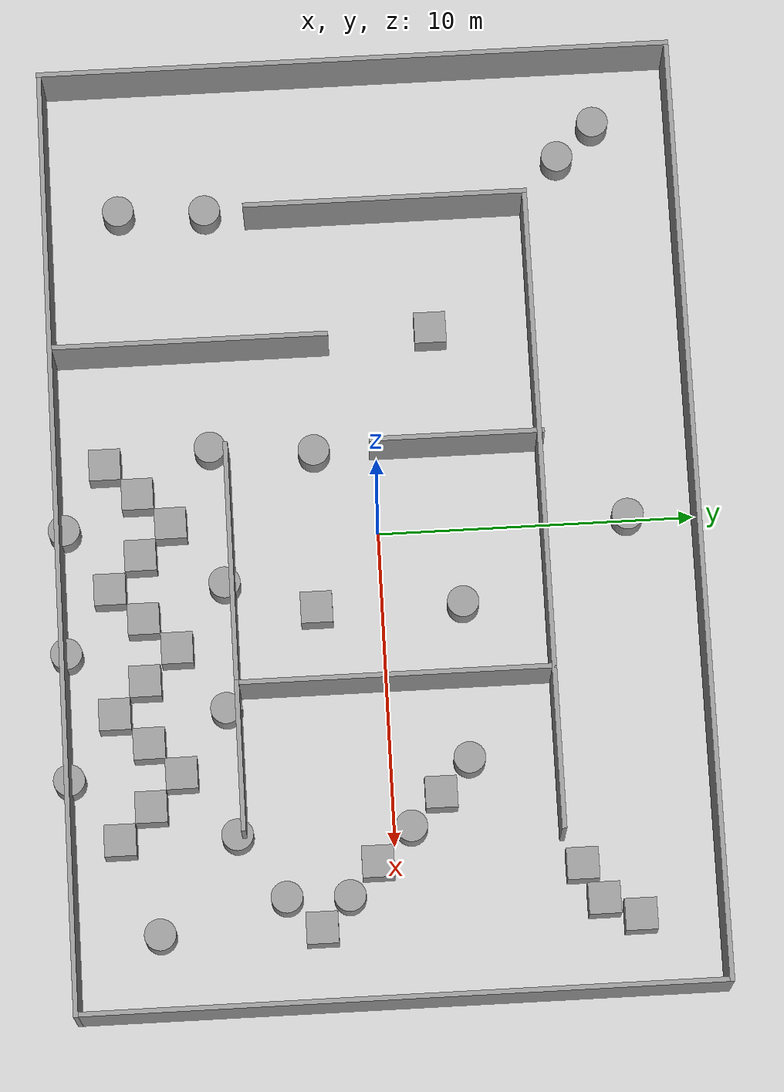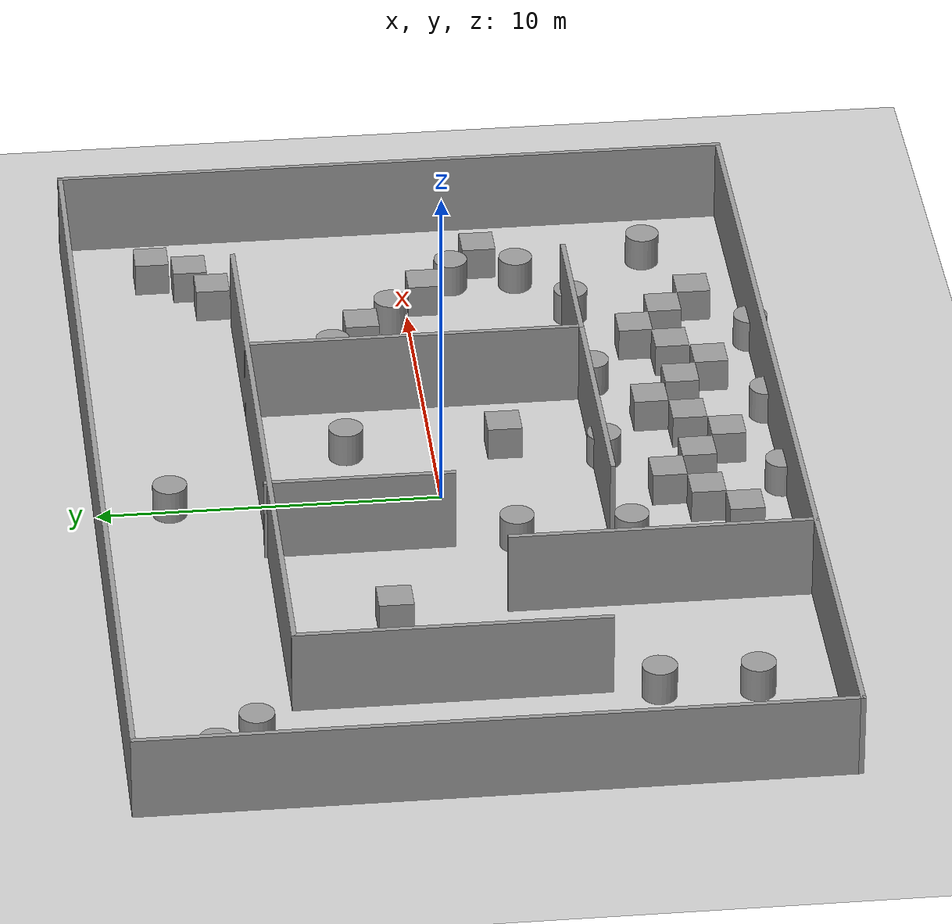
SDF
<sdf version="1.7">
 <world name="default">
  <light name="sun" type="directional">
   <pose>0 0 10 0 -0 0</pose>
   <diffuse>0.8 0.8 0.8 1</diffuse>
   <specular>0.2 0.2 0.2 1</specular>
   <attenuation>
    <range>1000</range>
    <constant>0.9</constant>
    <linear>0.01</linear>
    <quadratic>0.001</quadratic>
   </attenuation>
   <direction>-0.5 0.1 -0.9</direction>
   <spot><inner_angle>0</inner_angle><outer_angle>0</outer_angle><falloff>0</falloff></spot>
  </light>
  <model name="ground_plane">
   <static>1</static>
   <link name="link">
    <collision name="collision">
     <geometry><plane><normal>0 0 1</normal><size>100 100</size></plane></geometry>
     <surface>
      <contact><collide_bitmask>65535</collide_bitmask></contact>
      <friction><ode><mu>100</mu><mu2>50</mu2></ode></friction>
     </surface>
    </collision>
    <visual name="visual">
     <cast_shadows>0</cast_shadows>
     <geometry><plane><normal>0 0 1</normal><size>100 100</size></plane></geometry>
     <material>
      <script><uri>file://media/materials/scripts/gazebo.material</uri><name>Gazebo/Grey</name></script>
     </material>
    </visual>
   </link>
  </model>
  <gravity>0 0 -9.8</gravity>
  <magnetic_field>6e-06 2.3e-05 -4.2e-05</magnetic_field>
  <atmosphere type="adiabatic"/>
  <physics type="ode">
   <max_step_size>0.001</max_step_size>
   <real_time_factor>1</real_time_factor>
   <real_time_update_rate>1000</real_time_update_rate>
  </physics>
  <scene><ambient>0.4 0.4 0.4 1</ambient><background>0.7 0.7 0.7 1</background><shadows>1</shadows></scene>
  <spherical_coordinates>
   <surface_model>EARTH_WGS84</surface_model>
   <latitude_deg>0</latitude_deg>
   <longitude_deg>0</longitude_deg>
   <elevation>0</elevation>
   <heading_deg>0</heading_deg>
  </spherical_coordinates>
  <model name="base.world">
   <link name="Wall_0">
    <collision name="Wall_0_Collision">
     <geometry><box><size>20.15 0.15 2.5</size></box></geometry>
     <pose>0 0 1.25 0 -0 0</pose>
    </collision>
    <visual name="Wall_0_Visual">
     <pose>0 0 1.25 0 -0 0</pose>
     <geometry><box><size>20.15 0.15 2.5</size></box></geometry>
     <material>
      <script><uri>file://media/materials/scripts/gazebo.material</uri><name>Gazebo/Grey</name></script>
      <ambient>1 1 1 1</ambient>
     </material>
     <meta><layer>0</layer></meta>
    </visual>
    <pose>-15 0 0 0 -0 1.5708</pose>
   </link>
   <link name="Wall_11">
    <collision name="Wall_11_Collision">
     <geometry><box><size>9 0.15 2.5</size></box></geometry>
     <pose>0 0 1.25 0 -0 0</pose>
    </collision>
    <visual name="Wall_11_Visual">
     <pose>0 0 1.25 0 -0 0</pose>
     <geometry><box><size>9 0.15 2.5</size></box></geometry>
     <material>
      <script><uri>file://media/materials/scripts/gazebo.material</uri><name>Gazebo/Grey</name></script>
      <ambient>1 1 1 1</ambient>
     </material>
     <meta><layer>0</layer></meta>
    </visual>
    <pose>-10.331 0.772623 0 0 -0 1.5708</pose>
   </link>
   <link name="Wall_12">
    <collision name="Wall_12_Collision">
     <geometry><box><size>20.5 0.15 2.5</size></box></geometry>
     <pose>0 0 1.25 0 -0 0</pose>
    </collision>
    <visual name="Wall_12_Visual">
     <pose>0 0 1.25 0 -0 0</pose>
     <geometry><box><size>20.5 0.15 2.5</size></box></geometry>
     <material>
      <script><uri>file://media/materials/scripts/gazebo.material</uri><name>Gazebo/Grey</name></script>
      <ambient>1 1 1 1</ambient>
     </material>
     <meta><layer>0</layer></meta>
    </visual>
    <pose>-0.155983 5.19762 0 0 -0 0</pose>
   </link>
   <link name="Wall_14">
    <collision name="Wall_14_Collision">
     <geometry><box><size>8.829 0.15 2.5</size></box></geometry>
     <pose>0 0 1.25 0 -0 0</pose>
    </collision>
    <visual name="Wall_14_Visual">
     <pose>0 0 1.25 0 -0 0</pose>
     <geometry><box><size>8.829 0.15 2.5</size></box></geometry>
     <material>
      <script><uri>file://media/materials/scripts/gazebo.material</uri><name>Gazebo/Grey</name></script>
      <ambient>1 1 1 1</ambient>
     </material>
     <meta><layer>0</layer></meta>
    </visual>
    <pose>-6 -5.6605 0 0 -0 1.5708</pose>
   </link>
   <link name="Wall_16">
    <collision name="Wall_16_Collision">
     <geometry><box><size>9.982 0.15 2.5</size></box></geometry>
     <pose>0 0 1.25 0 -0 0</pose>
    </collision>
    <visual name="Wall_16_Visual">
     <pose>0 0 1.25 0 -0 0</pose>
     <geometry><box><size>9.982 0.15 2.5</size></box></geometry>
     <material>
      <script><uri>file://media/materials/scripts/gazebo.material</uri><name>Gazebo/Grey</name></script>
      <ambient>1 1 1 1</ambient>
     </material>
     <meta><layer>0</layer></meta>
    </visual>
    <pose>5 0.282 0 0 -0 -1.5708</pose>
   </link>
   <link name="Wall_18">
    <collision name="Wall_18_Collision">
     <geometry><box><size>4.721 0.15 2.5</size></box></geometry>
     <pose>0 0 1.25 0 -0 0</pose>
    </collision>
    <visual name="Wall_18_Visual">
     <pose>0 0 1.25 0 -0 0</pose>
     <geometry><box><size>4.721 0.15 2.5</size></box></geometry>
     <material>
      <script><uri>file://media/materials/scripts/gazebo.material</uri><name>Gazebo/Grey</name></script>
      <ambient>1 1 1 1</ambient>
     </material>
     <meta><layer>0</layer></meta>
    </visual>
    <pose>7.2855 -4.634 0 0 -0 0</pose>
   </link>
   <link name="Wall_2">
    <collision name="Wall_2_Collision">
     <geometry><box><size>20.15 0.15 2.5</size></box></geometry>
     <pose>0 0 1.25 0 -0 0</pose>
    </collision>
    <visual name="Wall_2_Visual">
     <pose>0 0 1.25 0 -0 0</pose>
     <geometry><box><size>20.15 0.15 2.5</size></box></geometry>
     <material>
      <script><uri>file://media/materials/scripts/gazebo.material</uri><name>Gazebo/Grey</name></script>
      <ambient>1 1 1 1</ambient>
     </material>
     <meta><layer>0</layer></meta>
    </visual>
    <pose>15 0 0 0 -0 -1.5708</pose>
   </link>
   <link name="Wall_20">
    <collision name="Wall_20_Collision">
     <geometry><box><size>7.75 0.15 2.5</size></box></geometry>
     <pose>0 0 1.25 0 -0 0</pose>
    </collision>
    <visual name="Wall_20_Visual">
     <pose>0 0 1.25 0 -0 0</pose>
     <geometry><box><size>7.75 0.15 2.5</size></box></geometry>
     <material>
      <script><uri>file://media/materials/scripts/gazebo.material</uri><name>Gazebo/Grey</name></script>
      <ambient>1 1 1 1</ambient>
     </material>
     <meta><layer>0</layer></meta>
    </visual>
    <pose>1.2 -4.634 0 0 -0 3.14159</pose>
   </link>
   <link name="Wall_22">
    <collision name="Wall_22_Collision">
     <geometry><box><size>5.5 0.15 2.5</size></box></geometry>
     <pose>0 0 1.25 0 -0 0</pose>
    </collision>
    <visual name="Wall_22_Visual">
     <pose>0 0 1.25 0 -0 0</pose>
     <geometry><box><size>5.5 0.15 2.5</size></box></geometry>
     <material>
      <script><uri>file://media/materials/scripts/gazebo.material</uri><name>Gazebo/Grey</name></script>
      <ambient>1 1 1 1</ambient>
     </material>
     <meta><layer>0</layer></meta>
    </visual>
    <pose>-2.50794 2.61201 0 0 -0 -1.5708</pose>
   </link>
   <link name="Wall_7">
    <collision name="Wall_7_Collision">
     <geometry><box><size>30.15 0.15 2.5</size></box></geometry>
     <pose>0 0 1.25 0 -0 0</pose>
    </collision>
    <visual name="Wall_7_Visual">
     <pose>0 0 1.25 0 -0 0</pose>
     <geometry><box><size>30.15 0.15 2.5</size></box></geometry>
     <material>
      <script><uri>file://media/materials/scripts/gazebo.material</uri><name>Gazebo/Grey</name></script>
      <ambient>1 1 1 1</ambient>
     </material>
     <meta><layer>0</layer></meta>
    </visual>
    <pose>0 10 0 0 -0 3.14159</pose>
   </link>
   <link name="Wall_9">
    <collision name="Wall_9_Collision">
     <geometry><box><size>30.15 0.15 2.5</size></box></geometry>
     <pose>0 0 1.25 0 -0 0</pose>
    </collision>
    <visual name="Wall_9_Visual">
     <pose>0 0 1.25 0 -0 0</pose>
     <geometry><box><size>30.15 0.15 2.5</size></box></geometry>
     <material>
      <script><uri>file://media/materials/scripts/gazebo.material</uri><name>Gazebo/Grey</name></script>
      <ambient>1 1 1 1</ambient>
     </material>
     <meta><layer>0</layer></meta>
    </visual>
    <pose>0 -10 0 0 -0 0</pose>
   </link>
   <static>1</static>
  </model>
  <model name="unit_box">
   <pose>-6.42026 1.99999 0.499995 0 -1e-05 0</pose>
   <link name="link">
    <inertial>
     <mass>1</mass>
     <inertia>
      <ixx>0.166667</ixx>
      <ixy>0</ixy>
      <ixz>0</ixz>
      <iyy>0.166667</iyy>
      <iyz>0</iyz>
      <izz>0.166667</izz>
     </inertia>
    </inertial>
    <collision name="collision"><geometry><box><size>1 1 1</size></box></geometry></collision>
    <visual name="visual">
     <geometry><box><size>1 1 1</size></box></geometry>
     <material>
      <script><name>Gazebo/Grey</name><uri>file://media/materials/scripts/gazebo.material</uri></script>
     </material>
    </visual>
   </link>
  </model>
  <model name="unit_cylinder">
   <pose>2.50829 2.5418 0.499992 -3e-06 3e-06 0</pose>
   <link name="link">
    <inertial>
     <mass>1</mass>
     <inertia><ixx>0.145833</ixx><ixy>0</ixy><ixz>0</ixz><iyy>0.145833</iyy><iyz>0</iyz><izz>0.125</izz></inertia>
    </inertial>
    <collision name="collision">
     <geometry><cylinder><radius>0.5</radius><length>1</length></cylinder></geometry>
    </collision>
    <visual name="visual">
     <geometry><cylinder><radius>0.5</radius><length>1</length></cylinder></geometry>
     <material>
      <script><name>Gazebo/Grey</name><uri>file://media/materials/scripts/gazebo.material</uri></script>
     </material>
    </visual>
   </link>
  </model>
  <model name="unit_cylinder_0">
   <pose>-2.61952 -1.88953 0.499997 4e-06 3e-06 -0</pose>
   <link name="link">
    <inertial>
     <mass>1</mass>
     <inertia><ixx>0.145833</ixx><ixy>0</ixy><ixz>0</ixz><iyy>0.145833</iyy><iyz>0</iyz><izz>0.125</izz></inertia>
    </inertial>
    <collision name="collision">
     <geometry><cylinder><radius>0.5</radius><length>1</length></cylinder></geometry>
    </collision>
    <visual name="visual">
     <geometry><cylinder><radius>0.5</radius><length>1</length></cylinder></geometry>
     <material>
      <script><name>Gazebo/Grey</name><uri>file://media/materials/scripts/gazebo.material</uri></script>
     </material>
    </visual>
   </link>
  </model>
  <model name="unit_box_0">
   <pose>2.4413 -2.05758 0.499995 0 1e-05 0</pose>
   <link name="link">
    <inertial>
     <mass>1</mass>
     <inertia>
      <ixx>0.166667</ixx>
      <ixy>0</ixy>
      <ixz>0</ixz>
      <iyy>0.166667</iyy>
      <iyz>0</iyz>
      <izz>0.166667</izz>
     </inertia>
    </inertial>
    <collision name="collision"><geometry><box><size>1 1 1</size></box></geometry></collision>
    <visual name="visual">
     <geometry><box><size>1 1 1</size></box></geometry>
     <material>
      <script><name>Gazebo/Grey</name><uri>file://media/materials/scripts/gazebo.material</uri></script>
     </material>
    </visual>
   </link>
  </model>
  <model name="unit_cylinder_1">
   <pose>-10.6708 -4.97923 0.499998 3e-06 -3e-06 0</pose>
   <link name="link">
    <inertial>
     <mass>1</mass>
     <inertia><ixx>0.145833</ixx><ixy>0</ixy><ixz>0</ixz><iyy>0.145833</iyy><iyz>0</iyz><izz>0.125</izz></inertia>
    </inertial>
    <collision name="collision">
     <geometry><cylinder><radius>0.5</radius><length>1</length></cylinder></geometry>
    </collision>
    <visual name="visual">
     <geometry><cylinder><radius>0.5</radius><length>1</length></cylinder></geometry>
     <material>
      <script><name>Gazebo/Grey</name><uri>file://media/materials/scripts/gazebo.material</uri></script>
     </material>
    </visual>
   </link>
  </model>
  <model name="unit_cylinder_2">
   <pose>-10.7908 -7.73492 0.499998 3e-06 -3e-06 0</pose>
   <link name="link">
    <inertial>
     <mass>1</mass>
     <inertia><ixx>0.145833</ixx><ixy>0</ixy><ixz>0</ixz><iyy>0.145833</iyy><iyz>0</iyz><izz>0.125</izz></inertia>
    </inertial>
    <collision name="collision">
     <geometry><cylinder><radius>0.5</radius><length>1</length></cylinder></geometry>
    </collision>
    <visual name="visual">
     <geometry><cylinder><radius>0.5</radius><length>1</length></cylinder></geometry>
     <material>
      <script><name>Gazebo/Grey</name><uri>file://media/materials/scripts/gazebo.material</uri></script>
     </material>
    </visual>
   </link>
  </model>
  <model name="unit_cylinder_3">
   <pose>-11.8605 6.37186 0.499998 3e-06 -3e-06 0</pose>
   <link name="link">
    <inertial>
     <mass>1</mass>
     <inertia><ixx>0.145833</ixx><ixy>0</ixy><ixz>0</ixz><iyy>0.145833</iyy><iyz>0</iyz><izz>0.125</izz></inertia>
    </inertial>
    <collision name="collision">
     <geometry><cylinder><radius>0.5</radius><length>1</length></cylinder></geometry>
    </collision>
    <visual name="visual">
     <geometry><cylinder><radius>0.5</radius><length>1</length></cylinder></geometry>
     <material>
      <script><name>Gazebo/Grey</name><uri>file://media/materials/scripts/gazebo.material</uri></script>
     </material>
    </visual>
   </link>
  </model>
  <model name="unit_cylinder_4">
   <pose>-12.9532 7.57714 0.499998 3e-06 -3e-06 0</pose>
   <link name="link">
    <inertial>
     <mass>1</mass>
     <inertia><ixx>0.145833</ixx><ixy>0</ixy><ixz>0</ixz><iyy>0.145833</iyy><iyz>0</iyz><izz>0.125</izz></inertia>
    </inertial>
    <collision name="collision">
     <geometry><cylinder><radius>0.5</radius><length>1</length></cylinder></geometry>
    </collision>
    <visual name="visual">
     <geometry><cylinder><radius>0.5</radius><length>1</length></cylinder></geometry>
     <material>
      <script><name>Gazebo/Grey</name><uri>file://media/materials/scripts/gazebo.material</uri></script>
     </material>
    </visual>
   </link>
  </model>
  <model name="unit_cylinder_5">
   <pose>-0.02059 7.87282 0.499998 3e-06 -3e-06 0</pose>
   <link name="link">
    <inertial>
     <mass>1</mass>
     <inertia><ixx>0.145833</ixx><ixy>0</ixy><ixz>0</ixz><iyy>0.145833</iyy><iyz>0</iyz><izz>0.125</izz></inertia>
    </inertial>
    <collision name="collision">
     <geometry><cylinder><radius>0.5</radius><length>1</length></cylinder></geometry>
    </collision>
    <visual name="visual">
     <geometry><cylinder><radius>0.5</radius><length>1</length></cylinder></geometry>
     <material>
      <script><name>Gazebo/Grey</name><uri>file://media/materials/scripts/gazebo.material</uri></script>
     </material>
    </visual>
   </link>
  </model>
  <model name="unit_box_1">
   <pose>10.9739 5.76555 0.499995 -1e-05 -0 -0</pose>
   <link name="link">
    <inertial>
     <mass>1</mass>
     <inertia>
      <ixx>0.166667</ixx>
      <ixy>0</ixy>
      <ixz>0</ixz>
      <iyy>0.166667</iyy>
      <iyz>0</iyz>
      <izz>0.166667</izz>
     </inertia>
    </inertial>
    <collision name="collision"><geometry><box><size>1 1 1</size></box></geometry></collision>
    <visual name="visual">
     <geometry><box><size>1 1 1</size></box></geometry>
     <material>
      <script><name>Gazebo/Grey</name><uri>file://media/materials/scripts/gazebo.material</uri></script>
     </material>
    </visual>
   </link>
  </model>
  <model name="unit_box_2">
   <pose>12.0872 6.36749 0.499995 -1e-05 -0 -0</pose>
   <link name="link">
    <inertial>
     <mass>1</mass>
     <inertia>
      <ixx>0.166667</ixx>
      <ixy>0</ixy>
      <ixz>0</ixz>
      <iyy>0.166667</iyy>
      <iyz>0</iyz>
      <izz>0.166667</izz>
     </inertia>
    </inertial>
    <collision name="collision"><geometry><box><size>1 1 1</size></box></geometry></collision>
    <visual name="visual">
     <geometry><box><size>1 1 1</size></box></geometry>
     <material>
      <script><name>Gazebo/Grey</name><uri>file://media/materials/scripts/gazebo.material</uri></script>
     </material>
    </visual>
   </link>
  </model>
  <model name="unit_box_3">
   <pose>12.6508 7.46608 0.499995 -1e-05 -0 -0</pose>
   <link name="link">
    <inertial>
     <mass>1</mass>
     <inertia>
      <ixx>0.166667</ixx>
      <ixy>0</ixy>
      <ixz>0</ixz>
      <iyy>0.166667</iyy>
      <iyz>0</iyz>
      <izz>0.166667</izz>
     </inertia>
    </inertial>
    <collision name="collision"><geometry><box><size>1 1 1</size></box></geometry></collision>
    <visual name="visual">
     <geometry><box><size>1 1 1</size></box></geometry>
     <material>
      <script><name>Gazebo/Grey</name><uri>file://media/materials/scripts/gazebo.material</uri></script>
     </material>
    </visual>
   </link>
  </model>
  <model name="unit_cylinder_6">
   <pose>7.47246 2.46144 0.499998 3e-06 -3e-06 0</pose>
   <link name="link">
    <inertial>
     <mass>1</mass>
     <inertia><ixx>0.145833</ixx><ixy>0</ixy><ixz>0</ixz><iyy>0.145833</iyy><iyz>0</iyz><izz>0.125</izz></inertia>
    </inertial>
    <collision name="collision">
     <geometry><cylinder><radius>0.5</radius><length>1</length></cylinder></geometry>
    </collision>
    <visual name="visual">
     <geometry><cylinder><radius>0.5</radius><length>1</length></cylinder></geometry>
     <material>
      <script><name>Gazebo/Grey</name><uri>file://media/materials/scripts/gazebo.material</uri></script>
     </material>
    </visual>
   </link>
  </model>
  <model name="unit_box_4">
   <pose>8.50631 1.51631 0.499995 -1e-05 -0 -0</pose>
   <link name="link">
    <inertial>
     <mass>1</mass>
     <inertia>
      <ixx>0.166667</ixx>
      <ixy>0</ixy>
      <ixz>0</ixz>
      <iyy>0.166667</iyy>
      <iyz>0</iyz>
      <izz>0.166667</izz>
     </inertia>
    </inertial>
    <collision name="collision"><geometry><box><size>1 1 1</size></box></geometry></collision>
    <visual name="visual">
     <geometry><box><size>1 1 1</size></box></geometry>
     <material>
      <script><name>Gazebo/Grey</name><uri>file://media/materials/scripts/gazebo.material</uri></script>
     </material>
    </visual>
   </link>
  </model>
  <model name="unit_cylinder_7">
   <pose>9.52397 0.540932 0.499998 3e-06 -3e-06 0</pose>
   <link name="link">
    <inertial>
     <mass>1</mass>
     <inertia><ixx>0.145833</ixx><ixy>0</ixy><ixz>0</ixz><iyy>0.145833</iyy><iyz>0</iyz><izz>0.125</izz></inertia>
    </inertial>
    <collision name="collision">
     <geometry><cylinder><radius>0.5</radius><length>1</length></cylinder></geometry>
    </collision>
    <visual name="visual">
     <geometry><cylinder><radius>0.5</radius><length>1</length></cylinder></geometry>
     <material>
      <script><name>Gazebo/Grey</name><uri>file://media/materials/scripts/gazebo.material</uri></script>
     </material>
    </visual>
   </link>
  </model>
  <model name="unit_box_5">
   <pose>10.57 -0.562297 0.499995 -1e-05 -0 -0</pose>
   <link name="link">
    <inertial>
     <mass>1</mass>
     <inertia>
      <ixx>0.166667</ixx>
      <ixy>0</ixy>
      <ixz>0</ixz>
      <iyy>0.166667</iyy>
      <iyz>0</iyz>
      <izz>0.166667</izz>
     </inertia>
    </inertial>
    <collision name="collision"><geometry><box><size>1 1 1</size></box></geometry></collision>
    <visual name="visual">
     <geometry><box><size>1 1 1</size></box></geometry>
     <material>
      <script><name>Gazebo/Grey</name><uri>file://media/materials/scripts/gazebo.material</uri></script>
     </material>
    </visual>
   </link>
  </model>
  <model name="unit_cylinder_8">
   <pose>11.5948 -1.47709 0.499998 3e-06 -3e-06 0</pose>
   <link name="link">
    <inertial>
     <mass>1</mass>
     <inertia><ixx>0.145833</ixx><ixy>0</ixy><ixz>0</ixz><iyy>0.145833</iyy><iyz>0</iyz><izz>0.125</izz></inertia>
    </inertial>
    <collision name="collision">
     <geometry><cylinder><radius>0.5</radius><length>1</length></cylinder></geometry>
    </collision>
    <visual name="visual">
     <geometry><cylinder><radius>0.5</radius><length>1</length></cylinder></geometry>
     <material>
      <script><name>Gazebo/Grey</name><uri>file://media/materials/scripts/gazebo.material</uri></script>
     </material>
    </visual>
   </link>
  </model>
  <model name="unit_box_6">
   <pose>12.5411 -2.38633 0.499995 -1e-05 -0 -0</pose>
   <link name="link">
    <inertial>
     <mass>1</mass>
     <inertia>
      <ixx>0.166667</ixx>
      <ixy>0</ixy>
      <ixz>0</ixz>
      <iyy>0.166667</iyy>
      <iyz>0</iyz>
      <izz>0.166667</izz>
     </inertia>
    </inertial>
    <collision name="collision"><geometry><box><size>1 1 1</size></box></geometry></collision>
    <visual name="visual">
     <geometry><box><size>1 1 1</size></box></geometry>
     <material>
      <script><name>Gazebo/Grey</name><uri>file://media/materials/scripts/gazebo.material</uri></script>
     </material>
    </visual>
   </link>
  </model>
  <model name="unit_cylinder_9">
   <pose>11.5364 -3.43124 0.499998 3e-06 -3e-06 0</pose>
   <link name="link">
    <inertial>
     <mass>1</mass>
     <inertia><ixx>0.145833</ixx><ixy>0</ixy><ixz>0</ixz><iyy>0.145833</iyy><iyz>0</iyz><izz>0.125</izz></inertia>
    </inertial>
    <collision name="collision">
     <geometry><cylinder><radius>0.5</radius><length>1</length></cylinder></geometry>
    </collision>
    <visual name="visual">
     <geometry><cylinder><radius>0.5</radius><length>1</length></cylinder></geometry>
     <material>
      <script><name>Gazebo/Grey</name><uri>file://media/materials/scripts/gazebo.material</uri></script>
     </material>
    </visual>
   </link>
  </model>
  <model name="unit_box_7">
   <pose>-2.49508 -8.50117 0.499995 -1e-05 -0 -0</pose>
   <link name="link">
    <inertial>
     <mass>1</mass>
     <inertia>
      <ixx>0.166667</ixx>
      <ixy>0</ixy>
      <ixz>0</ixz>
      <iyy>0.166667</iyy>
      <iyz>0</iyz>
      <izz>0.166667</izz>
     </inertia>
    </inertial>
    <collision name="collision"><geometry><box><size>1 1 1</size></box></geometry></collision>
    <visual name="visual">
     <geometry><box><size>1 1 1</size></box></geometry>
     <material>
      <script><name>Gazebo/Grey</name><uri>file://media/materials/scripts/gazebo.material</uri></script>
     </material>
    </visual>
   </link>
  </model>
  <model name="unit_box_8">
   <pose>-1.49171 -7.51272 0.499995 -1e-05 -0 0.000663</pose>
   <link name="link">
    <inertial>
     <mass>1</mass>
     <inertia>
      <ixx>0.166667</ixx>
      <ixy>0</ixy>
      <ixz>0</ixz>
      <iyy>0.166667</iyy>
      <iyz>0</iyz>
      <izz>0.166667</izz>
     </inertia>
    </inertial>
    <collision name="collision"><geometry><box><size>1 1 1</size></box></geometry></collision>
    <visual name="visual">
     <geometry><box><size>1 1 1</size></box></geometry>
     <material>
      <script><name>Gazebo/Grey</name><uri>file://media/materials/scripts/gazebo.material</uri></script>
     </material>
    </visual>
   </link>
  </model>
  <model name="unit_box_9">
   <pose>-0.496206 -6.5107 0.5 0 -0 0.008431</pose>
   <link name="link">
    <inertial>
     <mass>1</mass>
     <inertia>
      <ixx>0.166667</ixx>
      <ixy>0</ixy>
      <ixz>0</ixz>
      <iyy>0.166667</iyy>
      <iyz>0</iyz>
      <izz>0.166667</izz>
     </inertia>
    </inertial>
    <collision name="collision"><geometry><box><size>1 1 1</size></box></geometry></collision>
    <visual name="visual">
     <geometry><box><size>1 1 1</size></box></geometry>
     <material>
      <script><name>Gazebo/Grey</name><uri>file://media/materials/scripts/gazebo.material</uri></script>
     </material>
    </visual>
   </link>
  </model>
  <model name="unit_box_10">
   <pose>0.483631 -7.50259 0.5 0 -0 0.00829</pose>
   <link name="link">
    <inertial>
     <mass>1</mass>
     <inertia>
      <ixx>0.166667</ixx>
      <ixy>0</ixy>
      <ixz>0</ixz>
      <iyy>0.166667</iyy>
      <iyz>0</iyz>
      <izz>0.166667</izz>
     </inertia>
    </inertial>
    <collision name="collision"><geometry><box><size>1 1 1</size></box></geometry></collision>
    <visual name="visual">
     <geometry><box><size>1 1 1</size></box></geometry>
     <material>
      <script><name>Gazebo/Grey</name><uri>file://media/materials/scripts/gazebo.material</uri></script>
     </material>
    </visual>
   </link>
  </model>
  <model name="unit_box_11">
   <pose>1.52562 -8.50244 0.499995 -1e-05 -0 -0</pose>
   <link name="link">
    <inertial>
     <mass>1</mass>
     <inertia>
      <ixx>0.166667</ixx>
      <ixy>0</ixy>
      <ixz>0</ixz>
      <iyy>0.166667</iyy>
      <iyz>0</iyz>
      <izz>0.166667</izz>
     </inertia>
    </inertial>
    <collision name="collision"><geometry><box><size>1 1 1</size></box></geometry></collision>
    <visual name="visual">
     <geometry><box><size>1 1 1</size></box></geometry>
     <material>
      <script><name>Gazebo/Grey</name><uri>file://media/materials/scripts/gazebo.material</uri></script>
     </material>
    </visual>
   </link>
  </model>
  <model name="unit_box_12">
   <pose>2.5241 -7.48569 0.499995 -1e-05 -0 -0</pose>
   <link name="link">
    <inertial>
     <mass>1</mass>
     <inertia>
      <ixx>0.166667</ixx>
      <ixy>0</ixy>
      <ixz>0</ixz>
      <iyy>0.166667</iyy>
      <iyz>0</iyz>
      <izz>0.166667</izz>
     </inertia>
    </inertial>
    <collision name="collision"><geometry><box><size>1 1 1</size></box></geometry></collision>
    <visual name="visual">
     <geometry><box><size>1 1 1</size></box></geometry>
     <material>
      <script><name>Gazebo/Grey</name><uri>file://media/materials/scripts/gazebo.material</uri></script>
     </material>
    </visual>
   </link>
  </model>
  <model name="unit_box_13">
   <pose>3.50654 -6.47637 0.499995 -1e-05 -0 -0</pose>
   <link name="link">
    <inertial>
     <mass>1</mass>
     <inertia>
      <ixx>0.166667</ixx>
      <ixy>0</ixy>
      <ixz>0</ixz>
      <iyy>0.166667</iyy>
      <iyz>0</iyz>
      <izz>0.166667</izz>
     </inertia>
    </inertial>
    <collision name="collision"><geometry><box><size>1 1 1</size></box></geometry></collision>
    <visual name="visual">
     <geometry><box><size>1 1 1</size></box></geometry>
     <material>
      <script><name>Gazebo/Grey</name><uri>file://media/materials/scripts/gazebo.material</uri></script>
     </material>
    </visual>
   </link>
  </model>
  <model name="unit_box_14">
   <pose>4.50934 -7.5209 0.499995 -1e-05 -0 -0</pose>
   <link name="link">
    <inertial>
     <mass>1</mass>
     <inertia>
      <ixx>0.166667</ixx>
      <ixy>0</ixy>
      <ixz>0</ixz>
      <iyy>0.166667</iyy>
      <iyz>0</iyz>
      <izz>0.166667</izz>
     </inertia>
    </inertial>
    <collision name="collision"><geometry><box><size>1 1 1</size></box></geometry></collision>
    <visual name="visual">
     <geometry><box><size>1 1 1</size></box></geometry>
     <material>
      <script><name>Gazebo/Grey</name><uri>file://media/materials/scripts/gazebo.material</uri></script>
     </material>
    </visual>
   </link>
  </model>
  <model name="unit_box_15">
   <pose>5.51158 -8.509 0.499995 -1e-05 -0 -0</pose>
   <link name="link">
    <inertial>
     <mass>1</mass>
     <inertia>
      <ixx>0.166667</ixx>
      <ixy>0</ixy>
      <ixz>0</ixz>
      <iyy>0.166667</iyy>
      <iyz>0</iyz>
      <izz>0.166667</izz>
     </inertia>
    </inertial>
    <collision name="collision"><geometry><box><size>1 1 1</size></box></geometry></collision>
    <visual name="visual">
     <geometry><box><size>1 1 1</size></box></geometry>
     <material>
      <script><name>Gazebo/Grey</name><uri>file://media/materials/scripts/gazebo.material</uri></script>
     </material>
    </visual>
   </link>
  </model>
  <model name="unit_box_16">
   <pose>6.48861 -7.47911 0.499995 0 1e-05 0.006897</pose>
   <link name="link">
    <inertial>
     <mass>1</mass>
     <inertia>
      <ixx>0.166667</ixx>
      <ixy>0</ixy>
      <ixz>0</ixz>
      <iyy>0.166667</iyy>
      <iyz>0</iyz>
      <izz>0.166667</izz>
     </inertia>
    </inertial>
    <collision name="collision"><geometry><box><size>1 1 1</size></box></geometry></collision>
    <visual name="visual">
     <geometry><box><size>1 1 1</size></box></geometry>
     <material>
      <script><name>Gazebo/Grey</name><uri>file://media/materials/scripts/gazebo.material</uri></script>
     </material>
    </visual>
   </link>
  </model>
  <model name="unit_box_17">
   <pose>7.48162 -6.51166 0.499995 -1e-05 0 0.007714</pose>
   <link name="link">
    <inertial>
     <mass>1</mass>
     <inertia>
      <ixx>0.166667</ixx>
      <ixy>0</ixy>
      <ixz>0</ixz>
      <iyy>0.166667</iyy>
      <iyz>0</iyz>
      <izz>0.166667</izz>
     </inertia>
    </inertial>
    <collision name="collision"><geometry><box><size>1 1 1</size></box></geometry></collision>
    <visual name="visual">
     <geometry><box><size>1 1 1</size></box></geometry>
     <material>
      <script><name>Gazebo/Grey</name><uri>file://media/materials/scripts/gazebo.material</uri></script>
     </material>
    </visual>
   </link>
  </model>
  <model name="unit_box_18">
   <pose>8.49035 -7.50247 0.499995 -1e-05 -0 -0</pose>
   <link name="link">
    <inertial>
     <mass>1</mass>
     <inertia>
      <ixx>0.166667</ixx>
      <ixy>0</ixy>
      <ixz>0</ixz>
      <iyy>0.166667</iyy>
      <iyz>0</iyz>
      <izz>0.166667</izz>
     </inertia>
    </inertial>
    <collision name="collision"><geometry><box><size>1 1 1</size></box></geometry></collision>
    <visual name="visual">
     <geometry><box><size>1 1 1</size></box></geometry>
     <material>
      <script><name>Gazebo/Grey</name><uri>file://media/materials/scripts/gazebo.material</uri></script>
     </material>
    </visual>
   </link>
  </model>
  <model name="unit_box_19">
   <pose>9.48414 -8.50375 0.499995 -1e-05 -0 -0</pose>
   <link name="link">
    <inertial>
     <mass>1</mass>
     <inertia>
      <ixx>0.166667</ixx>
      <ixy>0</ixy>
      <ixz>0</ixz>
      <iyy>0.166667</iyy>
      <iyz>0</iyz>
      <izz>0.166667</izz>
     </inertia>
    </inertial>
    <collision name="collision"><geometry><box><size>1 1 1</size></box></geometry></collision>
    <visual name="visual">
     <geometry><box><size>1 1 1</size></box></geometry>
     <material>
      <script><name>Gazebo/Grey</name><uri>file://media/materials/scripts/gazebo.material</uri></script>
     </material>
    </visual>
   </link>
  </model>
  <model name="unit_cylinder_10">
   <pose>12.495 -7.38792 0.499998 3e-06 -3e-06 0</pose>
   <link name="link">
    <inertial>
     <mass>1</mass>
     <inertia><ixx>0.145833</ixx><ixy>0</ixy><ixz>0</ixz><iyy>0.145833</iyy><iyz>0</iyz><izz>0.125</izz></inertia>
    </inertial>
    <collision name="collision">
     <geometry><cylinder><radius>0.5</radius><length>1</length></cylinder></geometry>
    </collision>
    <visual name="visual">
     <geometry><cylinder><radius>0.5</radius><length>1</length></cylinder></geometry>
     <material>
      <script><name>Gazebo/Grey</name><uri>file://media/materials/scripts/gazebo.material</uri></script>
     </material>
    </visual>
   </link>
  </model>
  <model name="unit_cylinder_11">
   <pose>-0.435077 -9.8598 0.499992 -3e-06 4e-06 0</pose>
   <link name="link">
    <inertial>
     <mass>1</mass>
     <inertia><ixx>0.145833</ixx><ixy>0</ixy><ixz>0</ixz><iyy>0.145833</iyy><iyz>0</iyz><izz>0.125</izz></inertia>
    </inertial>
    <collision name="collision">
     <geometry><cylinder><radius>0.5</radius><length>1</length></cylinder></geometry>
    </collision>
    <visual name="visual">
     <geometry><cylinder><radius>0.5</radius><length>1</length></cylinder></geometry>
     <material>
      <script><name>Gazebo/Grey</name><uri>file://media/materials/scripts/gazebo.material</uri></script>
     </material>
    </visual>
   </link>
  </model>
  <model name="unit_cylinder_12">
   <pose>3.51952 -9.93821 0.499998 3e-06 -4e-06 0</pose>
   <link name="link">
    <inertial>
     <mass>1</mass>
     <inertia><ixx>0.145833</ixx><ixy>0</ixy><ixz>0</ixz><iyy>0.145833</iyy><iyz>0</iyz><izz>0.125</izz></inertia>
    </inertial>
    <collision name="collision">
     <geometry><cylinder><radius>0.5</radius><length>1</length></cylinder></geometry>
    </collision>
    <visual name="visual">
     <geometry><cylinder><radius>0.5</radius><length>1</length></cylinder></geometry>
     <material>
      <script><name>Gazebo/Grey</name><uri>file://media/materials/scripts/gazebo.material</uri></script>
     </material>
    </visual>
   </link>
  </model>
  <model name="unit_cylinder_13">
   <pose>7.51996 -10.0049 0.499992 -3e-06 -4e-06 -0</pose>
   <link name="link">
    <inertial>
     <mass>1</mass>
     <inertia><ixx>0.145833</ixx><ixy>0</ixy><ixz>0</ixz><iyy>0.145833</iyy><iyz>0</iyz><izz>0.125</izz></inertia>
    </inertial>
    <collision name="collision">
     <geometry><cylinder><radius>0.5</radius><length>1</length></cylinder></geometry>
    </collision>
    <visual name="visual">
     <geometry><cylinder><radius>0.5</radius><length>1</length></cylinder></geometry>
     <material>
      <script><name>Gazebo/Grey</name><uri>file://media/materials/scripts/gazebo.material</uri></script>
     </material>
    </visual>
   </link>
  </model>
  <model name="unit_cylinder_14">
   <pose>1.49495 -4.89724 0.499993 -3e-06 -3e-06 0</pose>
   <link name="link">
    <inertial>
     <mass>1</mass>
     <inertia><ixx>0.145833</ixx><ixy>0</ixy><ixz>0</ixz><iyy>0.145833</iyy><iyz>0</iyz><izz>0.125</izz></inertia>
    </inertial>
    <collision name="collision">
     <geometry><cylinder><radius>0.5</radius><length>1</length></cylinder></geometry>
    </collision>
    <visual name="visual">
     <geometry><cylinder><radius>0.5</radius><length>1</length></cylinder></geometry>
     <material>
      <script><name>Gazebo/Grey</name><uri>file://media/materials/scripts/gazebo.material</uri></script>
     </material>
    </visual>
   </link>
  </model>
  <model name="unit_cylinder_15">
   <pose>-2.88348 -5.16346 0.499998 3e-06 4e-06 -0</pose>
   <link name="link">
    <inertial>
     <mass>1</mass>
     <inertia><ixx>0.145833</ixx><ixy>0</ixy><ixz>0</ixz><iyy>0.145833</iyy><iyz>0</iyz><izz>0.125</izz></inertia>
    </inertial>
    <collision name="collision">
     <geometry><cylinder><radius>0.5</radius><length>1</length></cylinder></geometry>
    </collision>
    <visual name="visual">
     <geometry><cylinder><radius>0.5</radius><length>1</length></cylinder></geometry>
     <material>
      <script><name>Gazebo/Grey</name><uri>file://media/materials/scripts/gazebo.material</uri></script>
     </material>
    </visual>
   </link>
  </model>
  <model name="unit_cylinder_16">
   <pose>5.50186 -5.02292 0.499993 -3e-06 -4e-06 -0</pose>
   <link name="link">
    <inertial>
     <mass>1</mass>
     <inertia><ixx>0.145833</ixx><ixy>0</ixy><ixz>0</ixz><iyy>0.145833</iyy><iyz>0</iyz><izz>0.125</izz></inertia>
    </inertial>
    <collision name="collision">
     <geometry><cylinder><radius>0.5</radius><length>1</length></cylinder></geometry>
    </collision>
    <visual name="visual">
     <geometry><cylinder><radius>0.5</radius><length>1</length></cylinder></geometry>
     <material>
      <script><name>Gazebo/Grey</name><uri>file://media/materials/scripts/gazebo.material</uri></script>
     </material>
    </visual>
   </link>
  </model>
  <model name="unit_cylinder_17">
   <pose>9.50882 -4.86285 0.499997 3e-06 4e-06 -0</pose>
   <link name="link">
    <inertial>
     <mass>1</mass>
     <inertia><ixx>0.145833</ixx><ixy>0</ixy><ixz>0</ixz><iyy>0.145833</iyy><iyz>0</iyz><izz>0.125</izz></inertia>
    </inertial>
    <collision name="collision">
     <geometry><cylinder><radius>0.5</radius><length>1</length></cylinder></geometry>
    </collision>
    <visual name="visual">
     <geometry><cylinder><radius>0.5</radius><length>1</length></cylinder></geometry>
     <material>
      <script><name>Gazebo/Grey</name><uri>file://media/materials/scripts/gazebo.material</uri></script>
     </material>
    </visual>
   </link>
  </model>
 </world>
</sdf>
